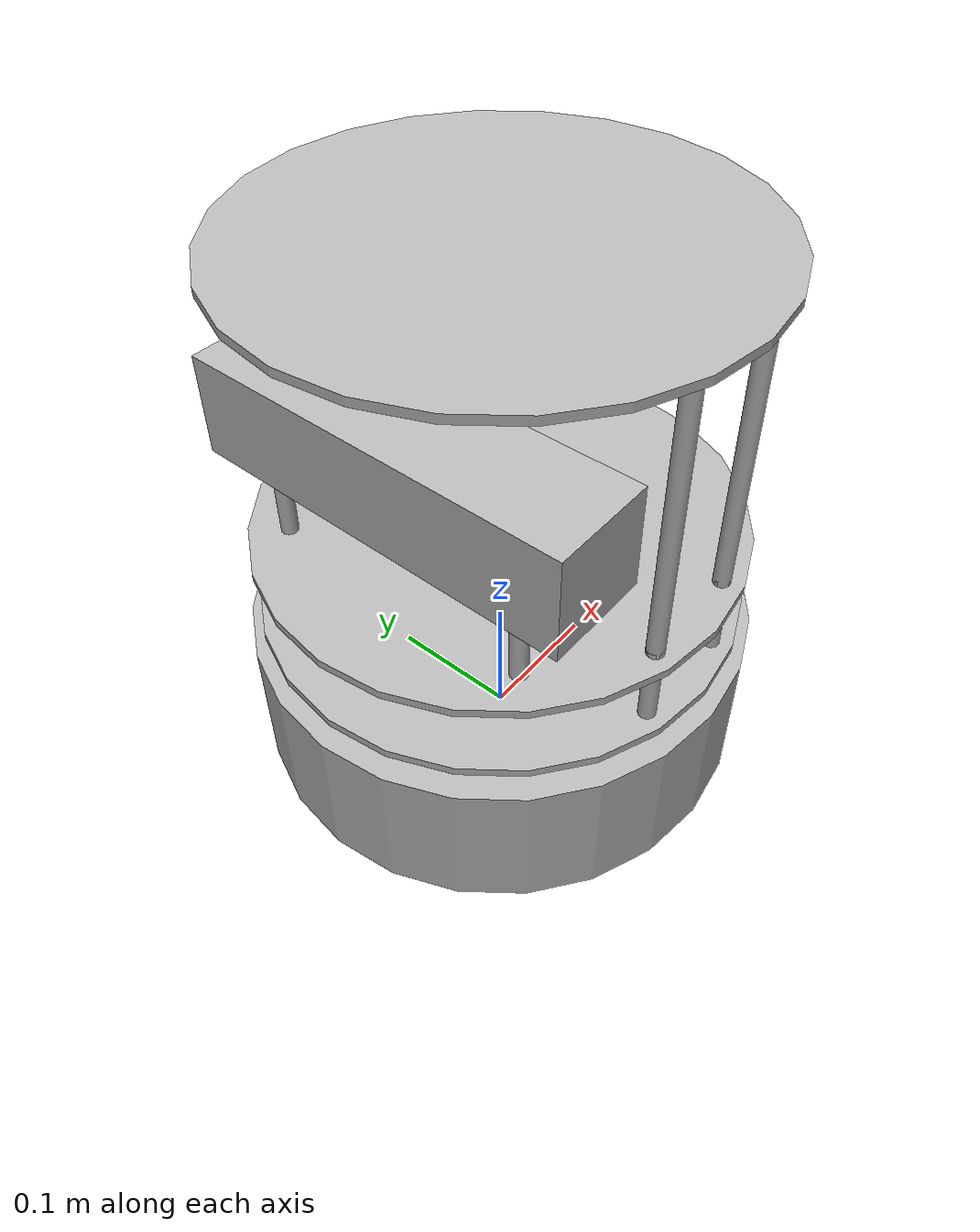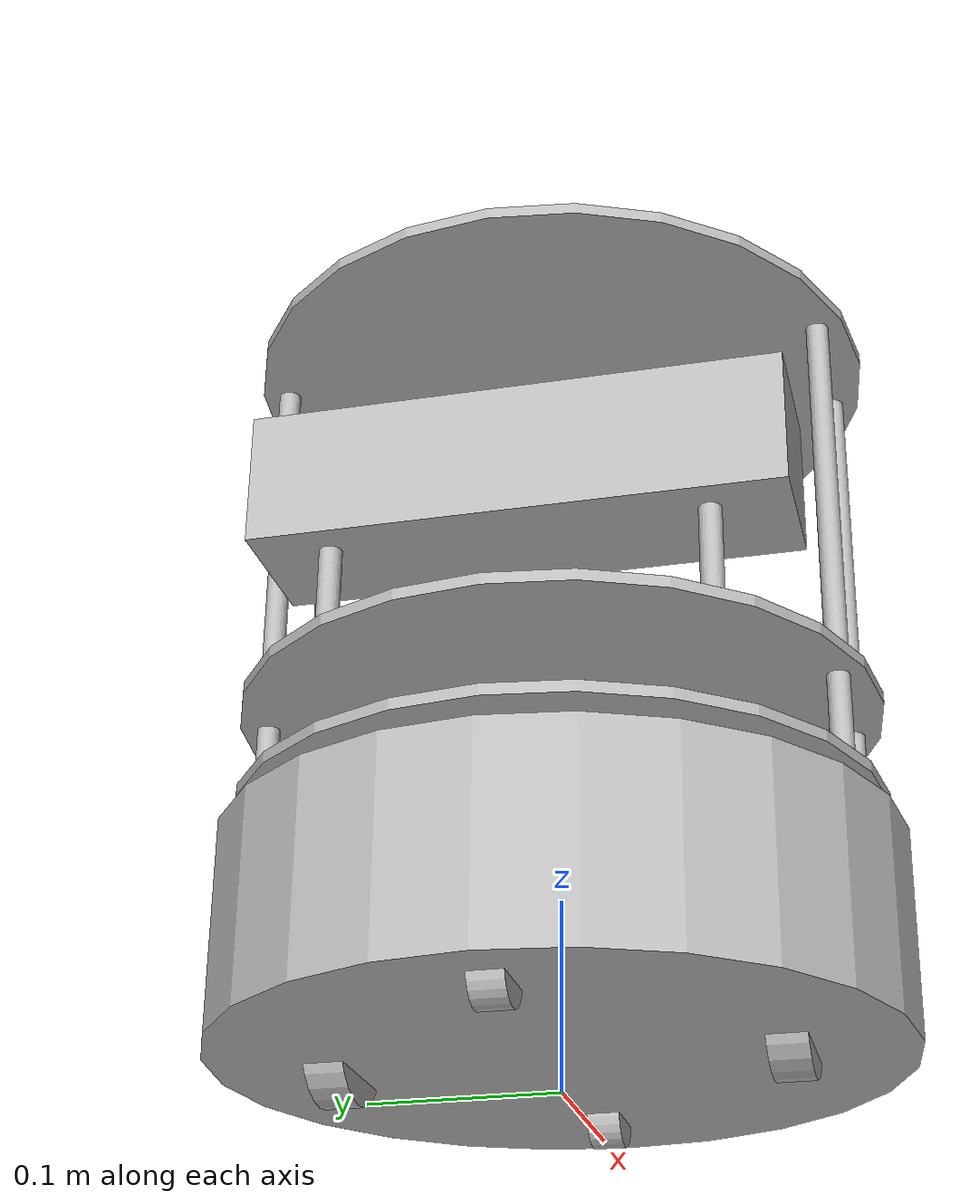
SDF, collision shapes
<?xml version='1.0'?>
<sdf version='1.6'>
  <model name='jason_turtlebot'>
    <link name='base_footprint'>
      <pose frame=''>0 0 0 0 -0 0</pose>
      <inertial>
        <pose frame=''>-0.002635 -4.1e-05 0.129243 0 -0 0</pose>
        <mass>4.6973</mass>
        <inertia>
          <ixx>0.1365</ixx>
          <ixy>-2.51802e-05</ixy>
          <ixz>0.0108194</ixz>
          <iyy>0.132157</iyy>
          <iyz>4.89572e-05</iyz>
          <izz>0.0741648</izz>
        </inertia>
      </inertial>
      <self_collide>0</self_collide>
      <kinematic>0</kinematic>
      <velocity_decay/>
      <sensor name='bumpers' type='contact'>
        <always_on>1</always_on>
        <update_rate>50</update_rate>
        <visualize>1</visualize>
        <contact>
          <collision>base_footprint_collision_base_link</collision>
          <topic>__default_topic__</topic>
        </contact>
        <pose frame=''>0 0 0.0102 0 -0 0</pose>
      </sensor>
      <sensor name='camera' type='depth'>
        <always_on>1</always_on>
        <update_rate>20</update_rate>
        <camera name='__default__'>
          <horizontal_fov>1.0472</horizontal_fov>
          <image>
            <format>B8G8R8</format>
            <width>640</width>
            <height>480</height>
          </image>
          <clip>
            <near>0.05</near>
            <far>8</far>
          </clip>
        </camera>
        <plugin name='kinect_camera_controller' filename='libgazebo_ros_openni_kinect.so'>
          <cameraName>camera</cameraName>
          <alwaysOn>true</alwaysOn>
          <updateRate>10</updateRate>
          <imageTopicName>rgb/image_raw</imageTopicName>
          <depthImageTopicName>depth/image_raw</depthImageTopicName>
          <pointCloudTopicName>depth/points</pointCloudTopicName>
          <cameraInfoTopicName>rgb/camera_info</cameraInfoTopicName>
          <depthImageCameraInfoTopicName>depth/camera_info</depthImageCameraInfoTopicName>
          <frameName>camera_depth_optical_frame</frameName>
          <baseline>0.1</baseline>
          <distortion_k1>0.0</distortion_k1>
          <distortion_k2>0.0</distortion_k2>
          <distortion_k3>0.0</distortion_k3>
          <distortion_t1>0.0</distortion_t1>
          <distortion_t2>0.0</distortion_t2>
          <pointCloudCutoff>0.4</pointCloudCutoff>
          <robotNamespace>/</robotNamespace>
        </plugin>
        <pose frame=''>-0.087 -0.0015 0.2972 0 -0 0</pose>
      </sensor>
      <sensor name='cliff_sensor_front' type='ray'>
        <always_on>1</always_on>
        <update_rate>50</update_rate>
        <visualize>1</visualize>
        <ray>
          <scan>
            <horizontal>
              <samples>50</samples>
              <resolution>1</resolution>
              <min_angle>-0.0436</min_angle>
              <max_angle>0.0436</max_angle>
            </horizontal>
            <vertical>
              <samples>1</samples>
              <min_angle>0</min_angle>
              <max_angle>0</max_angle>
            </vertical>
          </scan>
          <range>
            <min>0.01</min>
            <max>0.15</max>
            <resolution>1</resolution>
          </range>
        </ray>
        <pose frame=''>0.156 0 0.0316 3.14159 1.57079 3.14159</pose>
      </sensor>
      <sensor name='cliff_sensor_left' type='ray'>
        <always_on>1</always_on>
        <update_rate>50</update_rate>
        <visualize>1</visualize>
        <ray>
          <scan>
            <horizontal>
              <samples>50</samples>
              <resolution>1</resolution>
              <min_angle>-0.0436</min_angle>
              <max_angle>0.0436</max_angle>
            </horizontal>
            <vertical>
              <samples>1</samples>
              <min_angle>0</min_angle>
              <max_angle>0</max_angle>
            </vertical>
          </scan>
          <range>
            <min>0.01</min>
            <max>0.15</max>
            <resolution>1</resolution>
          </range>
        </ray>
        <pose frame=''>0.08734 0.13601 0.0316 3.14159 1.57079 3.14159</pose>
      </sensor>
      <sensor name='cliff_sensor_right' type='ray'>
        <always_on>1</always_on>
        <update_rate>50</update_rate>
        <visualize>1</visualize>
        <ray>
          <scan>
            <horizontal>
              <samples>50</samples>
              <resolution>1</resolution>
              <min_angle>-0.0436</min_angle>
              <max_angle>0.0436</max_angle>
            </horizontal>
            <vertical>
              <samples>1</samples>
              <min_angle>0</min_angle>
              <max_angle>0</max_angle>
            </vertical>
          </scan>
          <range>
            <min>0.01</min>
            <max>0.15</max>
            <resolution>1</resolution>
          </range>
        </ray>
        <pose frame=''>0.085 -0.13601 0.0316 3.14159 1.57079 3.14159</pose>
      </sensor>
      <sensor name='imu' type='imu'>
        <always_on>1</always_on>
        <update_rate>50</update_rate>
        <visualize>0</visualize>
        <imu>
          <angular_velocity>
            <x>
              <noise type='gaussian'>
                <mean>0</mean>
                <stddev>1.96e-06</stddev>
                <bias_mean>0</bias_mean>
                <bias_stddev>0</bias_stddev>
              </noise>
            </x>
            <y>
              <noise type='gaussian'>
                <mean>0</mean>
                <stddev>1.96e-06</stddev>
                <bias_mean>0</bias_mean>
                <bias_stddev>0</bias_stddev>
              </noise>
            </y>
            <z>
              <noise type='gaussian'>
                <mean>0</mean>
                <stddev>1.96e-06</stddev>
                <bias_mean>0</bias_mean>
                <bias_stddev>0</bias_stddev>
              </noise>
            </z>
          </angular_velocity>
          <linear_acceleration>
            <x>
              <noise type='gaussian'>
                <mean>0</mean>
                <stddev>0.017</stddev>
                <bias_mean>0.1</bias_mean>
                <bias_stddev>0.001</bias_stddev>
              </noise>
            </x>
            <y>
              <noise type='gaussian'>
                <mean>0</mean>
                <stddev>0.017</stddev>
                <bias_mean>0.1</bias_mean>
                <bias_stddev>0.001</bias_stddev>
              </noise>
            </y>
            <z>
              <noise type='gaussian'>
                <mean>0</mean>
                <stddev>0.017</stddev>
                <bias_mean>0.1</bias_mean>
                <bias_stddev>0.001</bias_stddev>
              </noise>
            </z>
          </linear_acceleration>
        </imu>
        <pose frame=''>0.056 0.062 0.0304 0 -0 0</pose>
      </sensor>
      <visual name='base_footprint_fixed_joint_lump__base_link_visual'>
        <pose frame=''>0.001 0 0.06219 0 -0 0</pose>
        <geometry>
          <mesh>
            <scale>1 1 1</scale>
            <uri>/opt/ros/kinetic/share/kobuki_description/meshes/main_body.dae</uri>
          </mesh>
        </geometry>
        <material>
          <script>
            <uri>__default__</uri>
            <name>__default__</name>
          </script>
        </material>
        <cast_shadows>1</cast_shadows>
        <transparency>0</transparency>
      </visual>
      <visual name='base_footprint_fixed_joint_lump__camera_link_visual_1'>
        <pose frame=''>-0.102 0.002 0.3012 0 -0 0</pose>
        <geometry>
          <mesh>
            <scale>1 1 1</scale>
            <uri>/opt/ros/kinetic/share/turtlebot_description/meshes/sensors/xtion_pro_camera.dae</uri>
          </mesh>
        </geometry>
        <material>
          <script>
            <uri>__default__</uri>
            <name>__default__</name>
          </script>
        </material>
        <cast_shadows>1</cast_shadows>
        <transparency>0</transparency>
      </visual>
      <visual name='base_footprint_fixed_joint_lump__mount_asus_xtion_pro_link_visual_2'>
        <pose frame=''>-0.1024 0 0.2822 -1.5708 0 0</pose>
        <geometry>
          <mesh>
            <scale>1 1 1</scale>
            <uri>/opt/ros/kinetic/share/turtlebot_description/meshes/sensors/xtion_pro_stack.dae</uri>
          </mesh>
        </geometry>
        <cast_shadows>1</cast_shadows>
        <transparency>0</transparency>
      </visual>
      <visual name='base_footprint_fixed_joint_lump__plate_bottom_link_visual_3'>
        <pose frame=''>0.02364 0 0.1408 0 -0 0</pose>
        <geometry>
          <mesh>
            <scale>1 1 1</scale>
            <uri>/opt/ros/kinetic/share/turtlebot_description/meshes/stacks/hexagons/plate_bottom.dae</uri>
          </mesh>
        </geometry>
        <cast_shadows>1</cast_shadows>
        <transparency>0</transparency>
      </visual>
      <visual name='base_footprint_fixed_joint_lump__plate_middle_link_visual_4'>
        <pose frame=''>-0.01364 0 0.1976 0 -0 0</pose>
        <geometry>
          <mesh>
            <scale>1 1 1</scale>
            <uri>/opt/ros/kinetic/share/turtlebot_description/meshes/stacks/hexagons/plate_middle.dae</uri>
          </mesh>
        </geometry>
        <cast_shadows>1</cast_shadows>
        <transparency>0</transparency>
      </visual>
      <visual name='base_footprint_fixed_joint_lump__plate_top_link_visual_5'>
        <pose frame=''>-0.01364 0 0.4068 0 -0 0</pose>
        <geometry>
          <mesh>
            <scale>1 1 1</scale>
            <uri>/opt/ros/kinetic/share/turtlebot_description/meshes/stacks/hexagons/plate_top.dae</uri>
          </mesh>
        </geometry>
        <cast_shadows>1</cast_shadows>
        <transparency>0</transparency>
      </visual>
      <visual name='base_footprint_fixed_joint_lump__pole_bottom_0_link_visual_6'>
        <pose frame=''>0.12 0.082 0.113 0 -0 0</pose>
        <geometry>
          <mesh>
            <scale>1 1 1</scale>
            <uri>/opt/ros/kinetic/share/turtlebot_description/meshes/stacks/hexagons/pole_bottom.dae</uri>
          </mesh>
        </geometry>
        <cast_shadows>1</cast_shadows>
        <transparency>0</transparency>
      </visual>
      <visual name='base_footprint_fixed_joint_lump__pole_bottom_1_link_visual_7'>
        <pose frame=''>0.055 0.12 0.113 0 -0 0</pose>
        <geometry>
          <mesh>
            <scale>1 1 1</scale>
            <uri>/opt/ros/kinetic/share/turtlebot_description/meshes/stacks/hexagons/pole_bottom.dae</uri>
          </mesh>
        </geometry>
        <cast_shadows>1</cast_shadows>
        <transparency>0</transparency>
      </visual>
      <visual name='base_footprint_fixed_joint_lump__pole_bottom_2_link_visual_8'>
        <pose frame=''>-0.055 0.12 0.113 0 -0 0</pose>
        <geometry>
          <mesh>
            <scale>1 1 1</scale>
            <uri>/opt/ros/kinetic/share/turtlebot_description/meshes/stacks/hexagons/pole_bottom.dae</uri>
          </mesh>
        </geometry>
        <cast_shadows>1</cast_shadows>
        <transparency>0</transparency>
      </visual>
      <visual name='base_footprint_fixed_joint_lump__pole_bottom_3_link_visual_9'>
        <pose frame=''>0.12 -0.082 0.113 0 -0 0</pose>
        <geometry>
          <mesh>
            <scale>1 1 1</scale>
            <uri>/opt/ros/kinetic/share/turtlebot_description/meshes/stacks/hexagons/pole_bottom.dae</uri>
          </mesh>
        </geometry>
        <cast_shadows>1</cast_shadows>
        <transparency>0</transparency>
      </visual>
      <visual name='base_footprint_fixed_joint_lump__pole_bottom_5_link_visual_11'>
        <pose frame=''>-0.055 -0.12 0.113 0 -0 0</pose>
        <geometry>
          <mesh>
            <scale>1 1 1</scale>
            <uri>/opt/ros/kinetic/share/turtlebot_description/meshes/stacks/hexagons/pole_bottom.dae</uri>
          </mesh>
        </geometry>
        <cast_shadows>1</cast_shadows>
        <transparency>0</transparency>
      </visual>
      <visual name='base_footprint_fixed_joint_lump__pole_bottom_4_link_visual_10'>
        <pose frame=''>0.055 -0.12 0.113 0 -0 0</pose>
        <geometry>
          <mesh>
            <scale>1 1 1</scale>
            <uri>/opt/ros/kinetic/share/turtlebot_description/meshes/stacks/hexagons/pole_bottom.dae</uri>
          </mesh>
        </geometry>
        <cast_shadows>1</cast_shadows>
        <transparency>0</transparency>
      </visual>
      <visual name='base_footprint_fixed_joint_lump__pole_kinect_0_link_visual_12'>
        <pose frame=''>-0.1024 0.098 0.2374 0 -0 0</pose>
        <geometry>
          <mesh>
            <scale>1 1 1</scale>
            <uri>/opt/ros/kinetic/share/turtlebot_description/meshes/sensors/sensor_pole.dae</uri>
          </mesh>
        </geometry>
        <cast_shadows>1</cast_shadows>
        <transparency>0</transparency>
      </visual>
      <visual name='base_footprint_fixed_joint_lump__pole_middle_0_link_visual_14'>
        <pose frame=''>0.0381 0.1505 0.1742 3.14159 -0 3.14159</pose>
        <geometry>
          <mesh>
            <scale>1 1 1</scale>
            <uri>/opt/ros/kinetic/share/turtlebot_description/meshes/stacks/hexagons/pole_middle.dae</uri>
          </mesh>
        </geometry>
        <cast_shadows>1</cast_shadows>
        <transparency>0</transparency>
      </visual>
      <visual name='base_footprint_fixed_joint_lump__pole_kinect_1_link_visual_13'>
        <pose frame=''>-0.1024 -0.098 0.2374 0 -0 0</pose>
        <geometry>
          <mesh>
            <scale>1 1 1</scale>
            <uri>/opt/ros/kinetic/share/turtlebot_description/meshes/sensors/sensor_pole.dae</uri>
          </mesh>
        </geometry>
        <cast_shadows>1</cast_shadows>
        <transparency>0</transparency>
      </visual>
      <visual name='base_footprint_fixed_joint_lump__pole_middle_1_link_visual_15'>
        <pose frame=''>0.0381 -0.1505 0.1742 3.14159 -0 3.14159</pose>
        <geometry>
          <mesh>
            <scale>1 1 1</scale>
            <uri>/opt/ros/kinetic/share/turtlebot_description/meshes/stacks/hexagons/pole_middle.dae</uri>
          </mesh>
        </geometry>
        <cast_shadows>1</cast_shadows>
        <transparency>0</transparency>
      </visual>
      <visual name='base_footprint_fixed_joint_lump__pole_middle_2_link_visual_16'>
        <pose frame=''>-0.0381 0.1505 0.1742 3.14159 -0 3.14159</pose>
        <geometry>
          <mesh>
            <scale>1 1 1</scale>
            <uri>/opt/ros/kinetic/share/turtlebot_description/meshes/stacks/hexagons/pole_middle.dae</uri>
          </mesh>
        </geometry>
        <cast_shadows>1</cast_shadows>
        <transparency>0</transparency>
      </visual>
      <visual name='base_footprint_fixed_joint_lump__pole_middle_3_link_visual_17'>
        <pose frame=''>-0.0381 -0.1505 0.1742 3.14159 -0 3.14159</pose>
        <geometry>
          <mesh>
            <scale>1 1 1</scale>
            <uri>/opt/ros/kinetic/share/turtlebot_description/meshes/stacks/hexagons/pole_middle.dae</uri>
          </mesh>
        </geometry>
        <cast_shadows>1</cast_shadows>
        <transparency>0</transparency>
      </visual>
      <visual name='base_footprint_fixed_joint_lump__pole_top_0_link_visual_18'>
        <pose frame=''>0.0381 0.1505 0.3022 0 -0 0</pose>
        <geometry>
          <mesh>
            <scale>1 1 1</scale>
            <uri>/opt/ros/kinetic/share/turtlebot_description/meshes/stacks/hexagons/pole_top.dae</uri>
          </mesh>
        </geometry>
        <cast_shadows>1</cast_shadows>
        <transparency>0</transparency>
      </visual>
      <visual name='base_footprint_fixed_joint_lump__pole_top_2_link_visual_20'>
        <pose frame=''>-0.0381 0.1505 0.3022 0 -0 0</pose>
        <geometry>
          <mesh>
            <scale>1 1 1</scale>
            <uri>/opt/ros/kinetic/share/turtlebot_description/meshes/stacks/hexagons/pole_top.dae</uri>
          </mesh>
        </geometry>
        <cast_shadows>1</cast_shadows>
        <transparency>0</transparency>
      </visual>
      <visual name='base_footprint_fixed_joint_lump__pole_top_1_link_visual_19'>
        <pose frame=''>0.0381 -0.1505 0.3022 0 -0 0</pose>
        <geometry>
          <mesh>
            <scale>1 1 1</scale>
            <uri>/opt/ros/kinetic/share/turtlebot_description/meshes/stacks/hexagons/pole_top.dae</uri>
          </mesh>
        </geometry>
        <cast_shadows>1</cast_shadows>
        <transparency>0</transparency>
      </visual>
      <visual name='base_footprint_fixed_joint_lump__pole_top_3_link_visual_21'>
        <pose frame=''>-0.0381 -0.1505 0.3022 0 -0 0</pose>
        <geometry>
          <mesh>
            <scale>1 1 1</scale>
            <uri>/opt/ros/kinetic/share/turtlebot_description/meshes/stacks/hexagons/pole_top.dae</uri>
          </mesh>
        </geometry>
        <cast_shadows>1</cast_shadows>
        <transparency>0</transparency>
      </visual>
      <collision name='base_footprint_fixed_joint_lump__base_link_collision'>
        <laser_retro>0</laser_retro>
        <max_contacts>10</max_contacts>
        <pose frame=''>0 0 0.06969 0 -0 0</pose>
        <geometry>
          <cylinder>
            <radius>0.178</radius>
            <length>0.10938</length>
          </cylinder>
        </geometry>
        <surface>
          <friction>
            <ode>
              <mu>0.3</mu>
              <mu2>0.3</mu2>
              <fdir1>0 0 0</fdir1>
              <slip1>0</slip1>
              <slip2>0</slip2>
            </ode>
            <torsional>
              <coefficient>1</coefficient>
              <patch_radius>0</patch_radius>
              <surface_radius>0</surface_radius>
              <use_patch_radius>1</use_patch_radius>
              <ode>
                <slip>0</slip>
              </ode>
            </torsional>
          </friction>
          <bounce>
            <restitution_coefficient>0</restitution_coefficient>
            <threshold>1e+06</threshold>
          </bounce>
          <contact>
            <collide_without_contact>0</collide_without_contact>
            <collide_without_contact_bitmask>1</collide_without_contact_bitmask>
            <collide_bitmask>1</collide_bitmask>
            <ode>
              <soft_cfm>0</soft_cfm>
              <soft_erp>0.2</soft_erp>
              <kp>1e+13</kp>
              <kd>1</kd>
              <max_vel>0.01</max_vel>
              <min_depth>0</min_depth>
            </ode>
            <bullet>
              <split_impulse>1</split_impulse>
              <split_impulse_penetration_threshold>-0.01</split_impulse_penetration_threshold>
              <soft_cfm>0</soft_cfm>
              <soft_erp>0.2</soft_erp>
              <kp>1e+13</kp>
              <kd>1</kd>
            </bullet>
          </contact>
        </surface>
      </collision>
      <collision name='base_footprint_fixed_joint_lump__camera_link_collision_1'>
        <laser_retro>0</laser_retro>
        <max_contacts>10</max_contacts>
        <pose frame=''>-0.087 -0.0015 0.2972 0 -0 0</pose>
        <geometry>
          <box>
            <size>0.073 0.276 0.072</size>
          </box>
        </geometry>
        <surface>
          <friction>
            <ode>
              <mu>1</mu>
              <mu2>1</mu2>
              <fdir1>0 0 0</fdir1>
              <slip1>0</slip1>
              <slip2>0</slip2>
            </ode>
            <torsional>
              <coefficient>1</coefficient>
              <patch_radius>0</patch_radius>
              <surface_radius>0</surface_radius>
              <use_patch_radius>1</use_patch_radius>
              <ode>
                <slip>0</slip>
              </ode>
            </torsional>
          </friction>
          <bounce>
            <restitution_coefficient>0</restitution_coefficient>
            <threshold>1e+06</threshold>
          </bounce>
          <contact>
            <collide_without_contact>0</collide_without_contact>
            <collide_without_contact_bitmask>1</collide_without_contact_bitmask>
            <collide_bitmask>1</collide_bitmask>
            <ode>
              <soft_cfm>0</soft_cfm>
              <soft_erp>0.2</soft_erp>
              <kp>1e+13</kp>
              <kd>1</kd>
              <max_vel>0.01</max_vel>
              <min_depth>0</min_depth>
            </ode>
            <bullet>
              <split_impulse>1</split_impulse>
              <split_impulse_penetration_threshold>-0.01</split_impulse_penetration_threshold>
              <soft_cfm>0</soft_cfm>
              <soft_erp>0.2</soft_erp>
              <kp>1e+13</kp>
              <kd>1</kd>
            </bullet>
          </contact>
        </surface>
      </collision>
      <collision name='base_footprint_fixed_joint_lump__caster_back_link_collision_2'>
        <laser_retro>0</laser_retro>
        <max_contacts>10</max_contacts>
        <pose frame=''>-0.135 0 0.0192 -1.5708 0 0</pose>
        <geometry>
          <cylinder>
            <radius>0.017</radius>
            <length>0.0176</length>
          </cylinder>
        </geometry>
        <surface>
          <friction>
            <ode>
              <mu>0</mu>
              <mu2>0</mu2>
              <fdir1>0 0 0</fdir1>
              <slip1>0</slip1>
              <slip2>0</slip2>
            </ode>
            <torsional>
              <coefficient>1</coefficient>
              <patch_radius>0</patch_radius>
              <surface_radius>0</surface_radius>
              <use_patch_radius>1</use_patch_radius>
              <ode>
                <slip>0</slip>
              </ode>
            </torsional>
          </friction>
          <bounce>
            <restitution_coefficient>0</restitution_coefficient>
            <threshold>1e+06</threshold>
          </bounce>
          <contact>
            <collide_without_contact>0</collide_without_contact>
            <collide_without_contact_bitmask>1</collide_without_contact_bitmask>
            <collide_bitmask>1</collide_bitmask>
            <ode>
              <soft_cfm>0</soft_cfm>
              <soft_erp>0.2</soft_erp>
              <kp>1e+06</kp>
              <kd>100</kd>
              <max_vel>1</max_vel>
              <min_depth>0.001</min_depth>
            </ode>
            <bullet>
              <split_impulse>1</split_impulse>
              <split_impulse_penetration_threshold>-0.01</split_impulse_penetration_threshold>
              <soft_cfm>0</soft_cfm>
              <soft_erp>0.2</soft_erp>
              <kp>1e+06</kp>
              <kd>100</kd>
            </bullet>
          </contact>
        </surface>
      </collision>
      <collision name='base_footprint_fixed_joint_lump__mount_asus_xtion_pro_link_collision_4'>
        <laser_retro>0</laser_retro>
        <max_contacts>10</max_contacts>
        <pose frame=''>-0.1024 0 0.2822 0 -0 0</pose>
        <geometry>
          <box>
            <size>0.033 0.276 0.012</size>
          </box>
        </geometry>
        <surface>
          <friction>
            <ode>
              <mu>1</mu>
              <mu2>1</mu2>
              <fdir1>0 0 0</fdir1>
              <slip1>0</slip1>
              <slip2>0</slip2>
            </ode>
            <torsional>
              <coefficient>1</coefficient>
              <patch_radius>0</patch_radius>
              <surface_radius>0</surface_radius>
              <use_patch_radius>1</use_patch_radius>
              <ode>
                <slip>0</slip>
              </ode>
            </torsional>
          </friction>
          <bounce>
            <restitution_coefficient>0</restitution_coefficient>
            <threshold>1e+06</threshold>
          </bounce>
          <contact>
            <collide_without_contact>0</collide_without_contact>
            <collide_without_contact_bitmask>1</collide_without_contact_bitmask>
            <collide_bitmask>1</collide_bitmask>
            <ode>
              <soft_cfm>0</soft_cfm>
              <soft_erp>0.2</soft_erp>
              <kp>1e+13</kp>
              <kd>1</kd>
              <max_vel>0.01</max_vel>
              <min_depth>0</min_depth>
            </ode>
            <bullet>
              <split_impulse>1</split_impulse>
              <split_impulse_penetration_threshold>-0.01</split_impulse_penetration_threshold>
              <soft_cfm>0</soft_cfm>
              <soft_erp>0.2</soft_erp>
              <kp>1e+13</kp>
              <kd>1</kd>
            </bullet>
          </contact>
        </surface>
      </collision>
      <collision name='base_footprint_fixed_joint_lump__caster_front_link_collision_3'>
        <laser_retro>0</laser_retro>
        <max_contacts>10</max_contacts>
        <pose frame=''>0.115 0 0.0172 -1.5708 0 0</pose>
        <geometry>
          <cylinder>
            <radius>0.017</radius>
            <length>0.0176</length>
          </cylinder>
        </geometry>
        <surface>
          <friction>
            <ode>
              <mu>0</mu>
              <mu2>0</mu2>
              <fdir1>0 0 0</fdir1>
              <slip1>0</slip1>
              <slip2>0</slip2>
            </ode>
            <torsional>
              <coefficient>1</coefficient>
              <patch_radius>0</patch_radius>
              <surface_radius>0</surface_radius>
              <use_patch_radius>1</use_patch_radius>
              <ode>
                <slip>0</slip>
              </ode>
            </torsional>
          </friction>
          <bounce>
            <restitution_coefficient>0</restitution_coefficient>
            <threshold>1e+06</threshold>
          </bounce>
          <contact>
            <collide_without_contact>0</collide_without_contact>
            <collide_without_contact_bitmask>1</collide_without_contact_bitmask>
            <collide_bitmask>1</collide_bitmask>
            <ode>
              <soft_cfm>0</soft_cfm>
              <soft_erp>0.2</soft_erp>
              <kp>1e+06</kp>
              <kd>100</kd>
              <max_vel>1</max_vel>
              <min_depth>0.001</min_depth>
            </ode>
            <bullet>
              <split_impulse>1</split_impulse>
              <split_impulse_penetration_threshold>-0.01</split_impulse_penetration_threshold>
              <soft_cfm>0</soft_cfm>
              <soft_erp>0.2</soft_erp>
              <kp>1e+06</kp>
              <kd>100</kd>
            </bullet>
          </contact>
        </surface>
      </collision>
      <collision name='base_footprint_fixed_joint_lump__plate_bottom_link_collision_5'>
        <laser_retro>0</laser_retro>
        <max_contacts>10</max_contacts>
        <pose frame=''>0 0 0.1408 0 -0 0</pose>
        <geometry>
          <cylinder>
            <radius>0.17</radius>
            <length>0.006</length>
          </cylinder>
        </geometry>
        <surface>
          <friction>
            <ode>
              <mu>1</mu>
              <mu2>1</mu2>
              <fdir1>0 0 0</fdir1>
              <slip1>0</slip1>
              <slip2>0</slip2>
            </ode>
            <torsional>
              <coefficient>1</coefficient>
              <patch_radius>0</patch_radius>
              <surface_radius>0</surface_radius>
              <use_patch_radius>1</use_patch_radius>
              <ode>
                <slip>0</slip>
              </ode>
            </torsional>
          </friction>
          <bounce>
            <restitution_coefficient>0</restitution_coefficient>
            <threshold>1e+06</threshold>
          </bounce>
          <contact>
            <collide_without_contact>0</collide_without_contact>
            <collide_without_contact_bitmask>1</collide_without_contact_bitmask>
            <collide_bitmask>1</collide_bitmask>
            <ode>
              <soft_cfm>0</soft_cfm>
              <soft_erp>0.2</soft_erp>
              <kp>1e+13</kp>
              <kd>1</kd>
              <max_vel>0.01</max_vel>
              <min_depth>0</min_depth>
            </ode>
            <bullet>
              <split_impulse>1</split_impulse>
              <split_impulse_penetration_threshold>-0.01</split_impulse_penetration_threshold>
              <soft_cfm>0</soft_cfm>
              <soft_erp>0.2</soft_erp>
              <kp>1e+13</kp>
              <kd>1</kd>
            </bullet>
          </contact>
        </surface>
      </collision>
      <collision name='base_footprint_fixed_joint_lump__plate_middle_link_collision_6'>
        <laser_retro>0</laser_retro>
        <max_contacts>10</max_contacts>
        <pose frame=''>0 0 0.1976 0 -0 0</pose>
        <geometry>
          <cylinder>
            <radius>0.17</radius>
            <length>0.006</length>
          </cylinder>
        </geometry>
        <surface>
          <friction>
            <ode>
              <mu>1</mu>
              <mu2>1</mu2>
              <fdir1>0 0 0</fdir1>
              <slip1>0</slip1>
              <slip2>0</slip2>
            </ode>
            <torsional>
              <coefficient>1</coefficient>
              <patch_radius>0</patch_radius>
              <surface_radius>0</surface_radius>
              <use_patch_radius>1</use_patch_radius>
              <ode>
                <slip>0</slip>
              </ode>
            </torsional>
          </friction>
          <bounce>
            <restitution_coefficient>0</restitution_coefficient>
            <threshold>1e+06</threshold>
          </bounce>
          <contact>
            <collide_without_contact>0</collide_without_contact>
            <collide_without_contact_bitmask>1</collide_without_contact_bitmask>
            <collide_bitmask>1</collide_bitmask>
            <ode>
              <soft_cfm>0</soft_cfm>
              <soft_erp>0.2</soft_erp>
              <kp>1e+13</kp>
              <kd>1</kd>
              <max_vel>0.01</max_vel>
              <min_depth>0</min_depth>
            </ode>
            <bullet>
              <split_impulse>1</split_impulse>
              <split_impulse_penetration_threshold>-0.01</split_impulse_penetration_threshold>
              <soft_cfm>0</soft_cfm>
              <soft_erp>0.2</soft_erp>
              <kp>1e+13</kp>
              <kd>1</kd>
            </bullet>
          </contact>
        </surface>
      </collision>
      <collision name='base_footprint_fixed_joint_lump__plate_top_link_collision_7'>
        <laser_retro>0</laser_retro>
        <max_contacts>10</max_contacts>
        <pose frame=''>0 0 0.4068 0 -0 0</pose>
        <geometry>
          <cylinder>
            <radius>0.17</radius>
            <length>0.006</length>
          </cylinder>
        </geometry>
        <surface>
          <friction>
            <ode>
              <mu>1</mu>
              <mu2>1</mu2>
              <fdir1>0 0 0</fdir1>
              <slip1>0</slip1>
              <slip2>0</slip2>
            </ode>
            <torsional>
              <coefficient>1</coefficient>
              <patch_radius>0</patch_radius>
              <surface_radius>0</surface_radius>
              <use_patch_radius>1</use_patch_radius>
              <ode>
                <slip>0</slip>
              </ode>
            </torsional>
          </friction>
          <bounce>
            <restitution_coefficient>0</restitution_coefficient>
            <threshold>1e+06</threshold>
          </bounce>
          <contact>
            <collide_without_contact>0</collide_without_contact>
            <collide_without_contact_bitmask>1</collide_without_contact_bitmask>
            <collide_bitmask>1</collide_bitmask>
            <ode>
              <soft_cfm>0</soft_cfm>
              <soft_erp>0.2</soft_erp>
              <kp>1e+13</kp>
              <kd>1</kd>
              <max_vel>0.01</max_vel>
              <min_depth>0</min_depth>
            </ode>
            <bullet>
              <split_impulse>1</split_impulse>
              <split_impulse_penetration_threshold>-0.01</split_impulse_penetration_threshold>
              <soft_cfm>0</soft_cfm>
              <soft_erp>0.2</soft_erp>
              <kp>1e+13</kp>
              <kd>1</kd>
            </bullet>
          </contact>
        </surface>
      </collision>
      <collision name='base_footprint_fixed_joint_lump__pole_bottom_2_link_collision_10'>
        <laser_retro>0</laser_retro>
        <max_contacts>10</max_contacts>
        <pose frame=''>-0.055 0.12 0.113 0 -0 0</pose>
        <geometry>
          <cylinder>
            <radius>0.006</radius>
            <length>0.0492</length>
          </cylinder>
        </geometry>
        <surface>
          <friction>
            <ode>
              <mu>1</mu>
              <mu2>1</mu2>
              <fdir1>0 0 0</fdir1>
              <slip1>0</slip1>
              <slip2>0</slip2>
            </ode>
            <torsional>
              <coefficient>1</coefficient>
              <patch_radius>0</patch_radius>
              <surface_radius>0</surface_radius>
              <use_patch_radius>1</use_patch_radius>
              <ode>
                <slip>0</slip>
              </ode>
            </torsional>
          </friction>
          <bounce>
            <restitution_coefficient>0</restitution_coefficient>
            <threshold>1e+06</threshold>
          </bounce>
          <contact>
            <collide_without_contact>0</collide_without_contact>
            <collide_without_contact_bitmask>1</collide_without_contact_bitmask>
            <collide_bitmask>1</collide_bitmask>
            <ode>
              <soft_cfm>0</soft_cfm>
              <soft_erp>0.2</soft_erp>
              <kp>1e+13</kp>
              <kd>1</kd>
              <max_vel>0.01</max_vel>
              <min_depth>0</min_depth>
            </ode>
            <bullet>
              <split_impulse>1</split_impulse>
              <split_impulse_penetration_threshold>-0.01</split_impulse_penetration_threshold>
              <soft_cfm>0</soft_cfm>
              <soft_erp>0.2</soft_erp>
              <kp>1e+13</kp>
              <kd>1</kd>
            </bullet>
          </contact>
        </surface>
      </collision>
      <collision name='base_footprint_fixed_joint_lump__pole_bottom_0_link_collision_8'>
        <laser_retro>0</laser_retro>
        <max_contacts>10</max_contacts>
        <pose frame=''>0.12 0.082 0.113 0 -0 0</pose>
        <geometry>
          <cylinder>
            <radius>0.006</radius>
            <length>0.0492</length>
          </cylinder>
        </geometry>
        <surface>
          <friction>
            <ode>
              <mu>1</mu>
              <mu2>1</mu2>
              <fdir1>0 0 0</fdir1>
              <slip1>0</slip1>
              <slip2>0</slip2>
            </ode>
            <torsional>
              <coefficient>1</coefficient>
              <patch_radius>0</patch_radius>
              <surface_radius>0</surface_radius>
              <use_patch_radius>1</use_patch_radius>
              <ode>
                <slip>0</slip>
              </ode>
            </torsional>
          </friction>
          <bounce>
            <restitution_coefficient>0</restitution_coefficient>
            <threshold>1e+06</threshold>
          </bounce>
          <contact>
            <collide_without_contact>0</collide_without_contact>
            <collide_without_contact_bitmask>1</collide_without_contact_bitmask>
            <collide_bitmask>1</collide_bitmask>
            <ode>
              <soft_cfm>0</soft_cfm>
              <soft_erp>0.2</soft_erp>
              <kp>1e+13</kp>
              <kd>1</kd>
              <max_vel>0.01</max_vel>
              <min_depth>0</min_depth>
            </ode>
            <bullet>
              <split_impulse>1</split_impulse>
              <split_impulse_penetration_threshold>-0.01</split_impulse_penetration_threshold>
              <soft_cfm>0</soft_cfm>
              <soft_erp>0.2</soft_erp>
              <kp>1e+13</kp>
              <kd>1</kd>
            </bullet>
          </contact>
        </surface>
      </collision>
      <collision name='base_footprint_fixed_joint_lump__pole_bottom_1_link_collision_9'>
        <laser_retro>0</laser_retro>
        <max_contacts>10</max_contacts>
        <pose frame=''>0.055 0.12 0.113 0 -0 0</pose>
        <geometry>
          <cylinder>
            <radius>0.006</radius>
            <length>0.0492</length>
          </cylinder>
        </geometry>
        <surface>
          <friction>
            <ode>
              <mu>1</mu>
              <mu2>1</mu2>
              <fdir1>0 0 0</fdir1>
              <slip1>0</slip1>
              <slip2>0</slip2>
            </ode>
            <torsional>
              <coefficient>1</coefficient>
              <patch_radius>0</patch_radius>
              <surface_radius>0</surface_radius>
              <use_patch_radius>1</use_patch_radius>
              <ode>
                <slip>0</slip>
              </ode>
            </torsional>
          </friction>
          <bounce>
            <restitution_coefficient>0</restitution_coefficient>
            <threshold>1e+06</threshold>
          </bounce>
          <contact>
            <collide_without_contact>0</collide_without_contact>
            <collide_without_contact_bitmask>1</collide_without_contact_bitmask>
            <collide_bitmask>1</collide_bitmask>
            <ode>
              <soft_cfm>0</soft_cfm>
              <soft_erp>0.2</soft_erp>
              <kp>1e+13</kp>
              <kd>1</kd>
              <max_vel>0.01</max_vel>
              <min_depth>0</min_depth>
            </ode>
            <bullet>
              <split_impulse>1</split_impulse>
              <split_impulse_penetration_threshold>-0.01</split_impulse_penetration_threshold>
              <soft_cfm>0</soft_cfm>
              <soft_erp>0.2</soft_erp>
              <kp>1e+13</kp>
              <kd>1</kd>
            </bullet>
          </contact>
        </surface>
      </collision>
      <collision name='base_footprint_fixed_joint_lump__pole_bottom_3_link_collision_11'>
        <laser_retro>0</laser_retro>
        <max_contacts>10</max_contacts>
        <pose frame=''>0.12 -0.082 0.113 0 -0 0</pose>
        <geometry>
          <cylinder>
            <radius>0.006</radius>
            <length>0.0492</length>
          </cylinder>
        </geometry>
        <surface>
          <friction>
            <ode>
              <mu>1</mu>
              <mu2>1</mu2>
              <fdir1>0 0 0</fdir1>
              <slip1>0</slip1>
              <slip2>0</slip2>
            </ode>
            <torsional>
              <coefficient>1</coefficient>
              <patch_radius>0</patch_radius>
              <surface_radius>0</surface_radius>
              <use_patch_radius>1</use_patch_radius>
              <ode>
                <slip>0</slip>
              </ode>
            </torsional>
          </friction>
          <bounce>
            <restitution_coefficient>0</restitution_coefficient>
            <threshold>1e+06</threshold>
          </bounce>
          <contact>
            <collide_without_contact>0</collide_without_contact>
            <collide_without_contact_bitmask>1</collide_without_contact_bitmask>
            <collide_bitmask>1</collide_bitmask>
            <ode>
              <soft_cfm>0</soft_cfm>
              <soft_erp>0.2</soft_erp>
              <kp>1e+13</kp>
              <kd>1</kd>
              <max_vel>0.01</max_vel>
              <min_depth>0</min_depth>
            </ode>
            <bullet>
              <split_impulse>1</split_impulse>
              <split_impulse_penetration_threshold>-0.01</split_impulse_penetration_threshold>
              <soft_cfm>0</soft_cfm>
              <soft_erp>0.2</soft_erp>
              <kp>1e+13</kp>
              <kd>1</kd>
            </bullet>
          </contact>
        </surface>
      </collision>
      <collision name='base_footprint_fixed_joint_lump__pole_bottom_4_link_collision_12'>
        <laser_retro>0</laser_retro>
        <max_contacts>10</max_contacts>
        <pose frame=''>0.055 -0.12 0.113 0 -0 0</pose>
        <geometry>
          <cylinder>
            <radius>0.006</radius>
            <length>0.0492</length>
          </cylinder>
        </geometry>
        <surface>
          <friction>
            <ode>
              <mu>1</mu>
              <mu2>1</mu2>
              <fdir1>0 0 0</fdir1>
              <slip1>0</slip1>
              <slip2>0</slip2>
            </ode>
            <torsional>
              <coefficient>1</coefficient>
              <patch_radius>0</patch_radius>
              <surface_radius>0</surface_radius>
              <use_patch_radius>1</use_patch_radius>
              <ode>
                <slip>0</slip>
              </ode>
            </torsional>
          </friction>
          <bounce>
            <restitution_coefficient>0</restitution_coefficient>
            <threshold>1e+06</threshold>
          </bounce>
          <contact>
            <collide_without_contact>0</collide_without_contact>
            <collide_without_contact_bitmask>1</collide_without_contact_bitmask>
            <collide_bitmask>1</collide_bitmask>
            <ode>
              <soft_cfm>0</soft_cfm>
              <soft_erp>0.2</soft_erp>
              <kp>1e+13</kp>
              <kd>1</kd>
              <max_vel>0.01</max_vel>
              <min_depth>0</min_depth>
            </ode>
            <bullet>
              <split_impulse>1</split_impulse>
              <split_impulse_penetration_threshold>-0.01</split_impulse_penetration_threshold>
              <soft_cfm>0</soft_cfm>
              <soft_erp>0.2</soft_erp>
              <kp>1e+13</kp>
              <kd>1</kd>
            </bullet>
          </contact>
        </surface>
      </collision>
      <collision name='base_footprint_fixed_joint_lump__pole_kinect_1_link_collision_15'>
        <laser_retro>0</laser_retro>
        <max_contacts>10</max_contacts>
        <pose frame=''>-0.1024 -0.098 0.2474 0 -0 0</pose>
        <geometry>
          <cylinder>
            <radius>0.006</radius>
            <length>0.0936</length>
          </cylinder>
        </geometry>
        <surface>
          <friction>
            <ode>
              <mu>1</mu>
              <mu2>1</mu2>
              <fdir1>0 0 0</fdir1>
              <slip1>0</slip1>
              <slip2>0</slip2>
            </ode>
            <torsional>
              <coefficient>1</coefficient>
              <patch_radius>0</patch_radius>
              <surface_radius>0</surface_radius>
              <use_patch_radius>1</use_patch_radius>
              <ode>
                <slip>0</slip>
              </ode>
            </torsional>
          </friction>
          <bounce>
            <restitution_coefficient>0</restitution_coefficient>
            <threshold>1e+06</threshold>
          </bounce>
          <contact>
            <collide_without_contact>0</collide_without_contact>
            <collide_without_contact_bitmask>1</collide_without_contact_bitmask>
            <collide_bitmask>1</collide_bitmask>
            <ode>
              <soft_cfm>0</soft_cfm>
              <soft_erp>0.2</soft_erp>
              <kp>1e+13</kp>
              <kd>1</kd>
              <max_vel>0.01</max_vel>
              <min_depth>0</min_depth>
            </ode>
            <bullet>
              <split_impulse>1</split_impulse>
              <split_impulse_penetration_threshold>-0.01</split_impulse_penetration_threshold>
              <soft_cfm>0</soft_cfm>
              <soft_erp>0.2</soft_erp>
              <kp>1e+13</kp>
              <kd>1</kd>
            </bullet>
          </contact>
        </surface>
      </collision>
      <collision name='base_footprint_fixed_joint_lump__pole_bottom_5_link_collision_13'>
        <laser_retro>0</laser_retro>
        <max_contacts>10</max_contacts>
        <pose frame=''>-0.055 -0.12 0.113 0 -0 0</pose>
        <geometry>
          <cylinder>
            <radius>0.006</radius>
            <length>0.0492</length>
          </cylinder>
        </geometry>
        <surface>
          <friction>
            <ode>
              <mu>1</mu>
              <mu2>1</mu2>
              <fdir1>0 0 0</fdir1>
              <slip1>0</slip1>
              <slip2>0</slip2>
            </ode>
            <torsional>
              <coefficient>1</coefficient>
              <patch_radius>0</patch_radius>
              <surface_radius>0</surface_radius>
              <use_patch_radius>1</use_patch_radius>
              <ode>
                <slip>0</slip>
              </ode>
            </torsional>
          </friction>
          <bounce>
            <restitution_coefficient>0</restitution_coefficient>
            <threshold>1e+06</threshold>
          </bounce>
          <contact>
            <collide_without_contact>0</collide_without_contact>
            <collide_without_contact_bitmask>1</collide_without_contact_bitmask>
            <collide_bitmask>1</collide_bitmask>
            <ode>
              <soft_cfm>0</soft_cfm>
              <soft_erp>0.2</soft_erp>
              <kp>1e+13</kp>
              <kd>1</kd>
              <max_vel>0.01</max_vel>
              <min_depth>0</min_depth>
            </ode>
            <bullet>
              <split_impulse>1</split_impulse>
              <split_impulse_penetration_threshold>-0.01</split_impulse_penetration_threshold>
              <soft_cfm>0</soft_cfm>
              <soft_erp>0.2</soft_erp>
              <kp>1e+13</kp>
              <kd>1</kd>
            </bullet>
          </contact>
        </surface>
      </collision>
      <collision name='base_footprint_fixed_joint_lump__pole_kinect_0_link_collision_14'>
        <laser_retro>0</laser_retro>
        <max_contacts>10</max_contacts>
        <pose frame=''>-0.1024 0.098 0.2474 0 -0 0</pose>
        <geometry>
          <cylinder>
            <radius>0.006</radius>
            <length>0.0936</length>
          </cylinder>
        </geometry>
        <surface>
          <friction>
            <ode>
              <mu>1</mu>
              <mu2>1</mu2>
              <fdir1>0 0 0</fdir1>
              <slip1>0</slip1>
              <slip2>0</slip2>
            </ode>
            <torsional>
              <coefficient>1</coefficient>
              <patch_radius>0</patch_radius>
              <surface_radius>0</surface_radius>
              <use_patch_radius>1</use_patch_radius>
              <ode>
                <slip>0</slip>
              </ode>
            </torsional>
          </friction>
          <bounce>
            <restitution_coefficient>0</restitution_coefficient>
            <threshold>1e+06</threshold>
          </bounce>
          <contact>
            <collide_without_contact>0</collide_without_contact>
            <collide_without_contact_bitmask>1</collide_without_contact_bitmask>
            <collide_bitmask>1</collide_bitmask>
            <ode>
              <soft_cfm>0</soft_cfm>
              <soft_erp>0.2</soft_erp>
              <kp>1e+13</kp>
              <kd>1</kd>
              <max_vel>0.01</max_vel>
              <min_depth>0</min_depth>
            </ode>
            <bullet>
              <split_impulse>1</split_impulse>
              <split_impulse_penetration_threshold>-0.01</split_impulse_penetration_threshold>
              <soft_cfm>0</soft_cfm>
              <soft_erp>0.2</soft_erp>
              <kp>1e+13</kp>
              <kd>1</kd>
            </bullet>
          </contact>
        </surface>
      </collision>
      <collision name='base_footprint_fixed_joint_lump__pole_middle_0_link_collision_16'>
        <laser_retro>0</laser_retro>
        <max_contacts>10</max_contacts>
        <pose frame=''>0.0381 0.1505 0.1742 0 -0 0</pose>
        <geometry>
          <cylinder>
            <radius>0.006</radius>
            <length>0.0608</length>
          </cylinder>
        </geometry>
        <surface>
          <friction>
            <ode>
              <mu>1</mu>
              <mu2>1</mu2>
              <fdir1>0 0 0</fdir1>
              <slip1>0</slip1>
              <slip2>0</slip2>
            </ode>
            <torsional>
              <coefficient>1</coefficient>
              <patch_radius>0</patch_radius>
              <surface_radius>0</surface_radius>
              <use_patch_radius>1</use_patch_radius>
              <ode>
                <slip>0</slip>
              </ode>
            </torsional>
          </friction>
          <bounce>
            <restitution_coefficient>0</restitution_coefficient>
            <threshold>1e+06</threshold>
          </bounce>
          <contact>
            <collide_without_contact>0</collide_without_contact>
            <collide_without_contact_bitmask>1</collide_without_contact_bitmask>
            <collide_bitmask>1</collide_bitmask>
            <ode>
              <soft_cfm>0</soft_cfm>
              <soft_erp>0.2</soft_erp>
              <kp>1e+13</kp>
              <kd>1</kd>
              <max_vel>0.01</max_vel>
              <min_depth>0</min_depth>
            </ode>
            <bullet>
              <split_impulse>1</split_impulse>
              <split_impulse_penetration_threshold>-0.01</split_impulse_penetration_threshold>
              <soft_cfm>0</soft_cfm>
              <soft_erp>0.2</soft_erp>
              <kp>1e+13</kp>
              <kd>1</kd>
            </bullet>
          </contact>
        </surface>
      </collision>
      <collision name='base_footprint_fixed_joint_lump__pole_middle_1_link_collision_17'>
        <laser_retro>0</laser_retro>
        <max_contacts>10</max_contacts>
        <pose frame=''>0.0381 -0.1505 0.1742 0 -0 0</pose>
        <geometry>
          <cylinder>
            <radius>0.006</radius>
            <length>0.0608</length>
          </cylinder>
        </geometry>
        <surface>
          <friction>
            <ode>
              <mu>1</mu>
              <mu2>1</mu2>
              <fdir1>0 0 0</fdir1>
              <slip1>0</slip1>
              <slip2>0</slip2>
            </ode>
            <torsional>
              <coefficient>1</coefficient>
              <patch_radius>0</patch_radius>
              <surface_radius>0</surface_radius>
              <use_patch_radius>1</use_patch_radius>
              <ode>
                <slip>0</slip>
              </ode>
            </torsional>
          </friction>
          <bounce>
            <restitution_coefficient>0</restitution_coefficient>
            <threshold>1e+06</threshold>
          </bounce>
          <contact>
            <collide_without_contact>0</collide_without_contact>
            <collide_without_contact_bitmask>1</collide_without_contact_bitmask>
            <collide_bitmask>1</collide_bitmask>
            <ode>
              <soft_cfm>0</soft_cfm>
              <soft_erp>0.2</soft_erp>
              <kp>1e+13</kp>
              <kd>1</kd>
              <max_vel>0.01</max_vel>
              <min_depth>0</min_depth>
            </ode>
            <bullet>
              <split_impulse>1</split_impulse>
              <split_impulse_penetration_threshold>-0.01</split_impulse_penetration_threshold>
              <soft_cfm>0</soft_cfm>
              <soft_erp>0.2</soft_erp>
              <kp>1e+13</kp>
              <kd>1</kd>
            </bullet>
          </contact>
        </surface>
      </collision>
      <collision name='base_footprint_fixed_joint_lump__pole_middle_2_link_collision_18'>
        <laser_retro>0</laser_retro>
        <max_contacts>10</max_contacts>
        <pose frame=''>-0.0381 0.1505 0.1742 0 -0 0</pose>
        <geometry>
          <cylinder>
            <radius>0.006</radius>
            <length>0.0608</length>
          </cylinder>
        </geometry>
        <surface>
          <friction>
            <ode>
              <mu>1</mu>
              <mu2>1</mu2>
              <fdir1>0 0 0</fdir1>
              <slip1>0</slip1>
              <slip2>0</slip2>
            </ode>
            <torsional>
              <coefficient>1</coefficient>
              <patch_radius>0</patch_radius>
              <surface_radius>0</surface_radius>
              <use_patch_radius>1</use_patch_radius>
              <ode>
                <slip>0</slip>
              </ode>
            </torsional>
          </friction>
          <bounce>
            <restitution_coefficient>0</restitution_coefficient>
            <threshold>1e+06</threshold>
          </bounce>
          <contact>
            <collide_without_contact>0</collide_without_contact>
            <collide_without_contact_bitmask>1</collide_without_contact_bitmask>
            <collide_bitmask>1</collide_bitmask>
            <ode>
              <soft_cfm>0</soft_cfm>
              <soft_erp>0.2</soft_erp>
              <kp>1e+13</kp>
              <kd>1</kd>
              <max_vel>0.01</max_vel>
              <min_depth>0</min_depth>
            </ode>
            <bullet>
              <split_impulse>1</split_impulse>
              <split_impulse_penetration_threshold>-0.01</split_impulse_penetration_threshold>
              <soft_cfm>0</soft_cfm>
              <soft_erp>0.2</soft_erp>
              <kp>1e+13</kp>
              <kd>1</kd>
            </bullet>
          </contact>
        </surface>
      </collision>
      <collision name='base_footprint_fixed_joint_lump__pole_middle_3_link_collision_19'>
        <laser_retro>0</laser_retro>
        <max_contacts>10</max_contacts>
        <pose frame=''>-0.0381 -0.1505 0.1742 0 -0 0</pose>
        <geometry>
          <cylinder>
            <radius>0.006</radius>
            <length>0.0608</length>
          </cylinder>
        </geometry>
        <surface>
          <friction>
            <ode>
              <mu>1</mu>
              <mu2>1</mu2>
              <fdir1>0 0 0</fdir1>
              <slip1>0</slip1>
              <slip2>0</slip2>
            </ode>
            <torsional>
              <coefficient>1</coefficient>
              <patch_radius>0</patch_radius>
              <surface_radius>0</surface_radius>
              <use_patch_radius>1</use_patch_radius>
              <ode>
                <slip>0</slip>
              </ode>
            </torsional>
          </friction>
          <bounce>
            <restitution_coefficient>0</restitution_coefficient>
            <threshold>1e+06</threshold>
          </bounce>
          <contact>
            <collide_without_contact>0</collide_without_contact>
            <collide_without_contact_bitmask>1</collide_without_contact_bitmask>
            <collide_bitmask>1</collide_bitmask>
            <ode>
              <soft_cfm>0</soft_cfm>
              <soft_erp>0.2</soft_erp>
              <kp>1e+13</kp>
              <kd>1</kd>
              <max_vel>0.01</max_vel>
              <min_depth>0</min_depth>
            </ode>
            <bullet>
              <split_impulse>1</split_impulse>
              <split_impulse_penetration_threshold>-0.01</split_impulse_penetration_threshold>
              <soft_cfm>0</soft_cfm>
              <soft_erp>0.2</soft_erp>
              <kp>1e+13</kp>
              <kd>1</kd>
            </bullet>
          </contact>
        </surface>
      </collision>
      <collision name='base_footprint_fixed_joint_lump__pole_top_1_link_collision_21'>
        <laser_retro>0</laser_retro>
        <max_contacts>10</max_contacts>
        <pose frame=''>0.0381 -0.1505 0.3022 0 -0 0</pose>
        <geometry>
          <cylinder>
            <radius>0.006</radius>
            <length>0.2032</length>
          </cylinder>
        </geometry>
        <surface>
          <friction>
            <ode>
              <mu>1</mu>
              <mu2>1</mu2>
              <fdir1>0 0 0</fdir1>
              <slip1>0</slip1>
              <slip2>0</slip2>
            </ode>
            <torsional>
              <coefficient>1</coefficient>
              <patch_radius>0</patch_radius>
              <surface_radius>0</surface_radius>
              <use_patch_radius>1</use_patch_radius>
              <ode>
                <slip>0</slip>
              </ode>
            </torsional>
          </friction>
          <bounce>
            <restitution_coefficient>0</restitution_coefficient>
            <threshold>1e+06</threshold>
          </bounce>
          <contact>
            <collide_without_contact>0</collide_without_contact>
            <collide_without_contact_bitmask>1</collide_without_contact_bitmask>
            <collide_bitmask>1</collide_bitmask>
            <ode>
              <soft_cfm>0</soft_cfm>
              <soft_erp>0.2</soft_erp>
              <kp>1e+13</kp>
              <kd>1</kd>
              <max_vel>0.01</max_vel>
              <min_depth>0</min_depth>
            </ode>
            <bullet>
              <split_impulse>1</split_impulse>
              <split_impulse_penetration_threshold>-0.01</split_impulse_penetration_threshold>
              <soft_cfm>0</soft_cfm>
              <soft_erp>0.2</soft_erp>
              <kp>1e+13</kp>
              <kd>1</kd>
            </bullet>
          </contact>
        </surface>
      </collision>
      <collision name='base_footprint_fixed_joint_lump__pole_top_0_link_collision_20'>
        <laser_retro>0</laser_retro>
        <max_contacts>10</max_contacts>
        <pose frame=''>0.0381 0.1505 0.3022 0 -0 0</pose>
        <geometry>
          <cylinder>
            <radius>0.006</radius>
            <length>0.2032</length>
          </cylinder>
        </geometry>
        <surface>
          <friction>
            <ode>
              <mu>1</mu>
              <mu2>1</mu2>
              <fdir1>0 0 0</fdir1>
              <slip1>0</slip1>
              <slip2>0</slip2>
            </ode>
            <torsional>
              <coefficient>1</coefficient>
              <patch_radius>0</patch_radius>
              <surface_radius>0</surface_radius>
              <use_patch_radius>1</use_patch_radius>
              <ode>
                <slip>0</slip>
              </ode>
            </torsional>
          </friction>
          <bounce>
            <restitution_coefficient>0</restitution_coefficient>
            <threshold>1e+06</threshold>
          </bounce>
          <contact>
            <collide_without_contact>0</collide_without_contact>
            <collide_without_contact_bitmask>1</collide_without_contact_bitmask>
            <collide_bitmask>1</collide_bitmask>
            <ode>
              <soft_cfm>0</soft_cfm>
              <soft_erp>0.2</soft_erp>
              <kp>1e+13</kp>
              <kd>1</kd>
              <max_vel>0.01</max_vel>
              <min_depth>0</min_depth>
            </ode>
            <bullet>
              <split_impulse>1</split_impulse>
              <split_impulse_penetration_threshold>-0.01</split_impulse_penetration_threshold>
              <soft_cfm>0</soft_cfm>
              <soft_erp>0.2</soft_erp>
              <kp>1e+13</kp>
              <kd>1</kd>
            </bullet>
          </contact>
        </surface>
      </collision>
      <collision name='base_footprint_fixed_joint_lump__pole_top_2_link_collision_22'>
        <laser_retro>0</laser_retro>
        <max_contacts>10</max_contacts>
        <pose frame=''>-0.0381 0.1505 0.3022 0 -0 0</pose>
        <geometry>
          <cylinder>
            <radius>0.006</radius>
            <length>0.2032</length>
          </cylinder>
        </geometry>
        <surface>
          <friction>
            <ode>
              <mu>1</mu>
              <mu2>1</mu2>
              <fdir1>0 0 0</fdir1>
              <slip1>0</slip1>
              <slip2>0</slip2>
            </ode>
            <torsional>
              <coefficient>1</coefficient>
              <patch_radius>0</patch_radius>
              <surface_radius>0</surface_radius>
              <use_patch_radius>1</use_patch_radius>
              <ode>
                <slip>0</slip>
              </ode>
            </torsional>
          </friction>
          <bounce>
            <restitution_coefficient>0</restitution_coefficient>
            <threshold>1e+06</threshold>
          </bounce>
          <contact>
            <collide_without_contact>0</collide_without_contact>
            <collide_without_contact_bitmask>1</collide_without_contact_bitmask>
            <collide_bitmask>1</collide_bitmask>
            <ode>
              <soft_cfm>0</soft_cfm>
              <soft_erp>0.2</soft_erp>
              <kp>1e+13</kp>
              <kd>1</kd>
              <max_vel>0.01</max_vel>
              <min_depth>0</min_depth>
            </ode>
            <bullet>
              <split_impulse>1</split_impulse>
              <split_impulse_penetration_threshold>-0.01</split_impulse_penetration_threshold>
              <soft_cfm>0</soft_cfm>
              <soft_erp>0.2</soft_erp>
              <kp>1e+13</kp>
              <kd>1</kd>
            </bullet>
          </contact>
        </surface>
      </collision>
      <collision name='base_footprint_fixed_joint_lump__pole_top_3_link_collision_23'>
        <laser_retro>0</laser_retro>
        <max_contacts>10</max_contacts>
        <pose frame=''>-0.0381 -0.1505 0.3022 0 -0 0</pose>
        <geometry>
          <cylinder>
            <radius>0.006</radius>
            <length>0.2032</length>
          </cylinder>
        </geometry>
        <surface>
          <friction>
            <ode>
              <mu>1</mu>
              <mu2>1</mu2>
              <fdir1>0 0 0</fdir1>
              <slip1>0</slip1>
              <slip2>0</slip2>
            </ode>
            <torsional>
              <coefficient>1</coefficient>
              <patch_radius>0</patch_radius>
              <surface_radius>0</surface_radius>
              <use_patch_radius>1</use_patch_radius>
              <ode>
                <slip>0</slip>
              </ode>
            </torsional>
          </friction>
          <bounce>
            <restitution_coefficient>0</restitution_coefficient>
            <threshold>1e+06</threshold>
          </bounce>
          <contact>
            <collide_without_contact>0</collide_without_contact>
            <collide_without_contact_bitmask>1</collide_without_contact_bitmask>
            <collide_bitmask>1</collide_bitmask>
            <ode>
              <soft_cfm>0</soft_cfm>
              <soft_erp>0.2</soft_erp>
              <kp>1e+13</kp>
              <kd>1</kd>
              <max_vel>0.01</max_vel>
              <min_depth>0</min_depth>
            </ode>
            <bullet>
              <split_impulse>1</split_impulse>
              <split_impulse_penetration_threshold>-0.01</split_impulse_penetration_threshold>
              <soft_cfm>0</soft_cfm>
              <soft_erp>0.2</soft_erp>
              <kp>1e+13</kp>
              <kd>1</kd>
            </bullet>
          </contact>
        </surface>
      </collision>
    </link>
    <link name='wheel_left_link'>
      <pose frame=''>0 0.115 0.0352 -1.5708 0 0</pose>
      <inertial>
        <pose frame=''>0 0 0 0 -0 0</pose>
        <mass>0.01</mass>
        <inertia>
          <ixx>0.001</ixx>
          <ixy>0</ixy>
          <ixz>0</ixz>
          <iyy>0.001</iyy>
          <iyz>0</iyz>
          <izz>0.001</izz>
        </inertia>
      </inertial>
      <self_collide>0</self_collide>
      <kinematic>0</kinematic>
      <velocity_decay/>
      <visual name='wheel_left_link_visual'>
        <pose frame=''>0 0 0 0 -0 0</pose>
        <geometry>
          <mesh>
            <scale>1 1 1</scale>
            <uri>/opt/ros/kinetic/share/kobuki_description/meshes/wheel.dae</uri>
          </mesh>
        </geometry>
        <material>
          <script>
            <uri>__default__</uri>
            <name>__default__</name>
          </script>
        </material>
        <cast_shadows>1</cast_shadows>
        <transparency>0</transparency>
      </visual>
      <collision name='wheel_left_link_collision'>
        <laser_retro>0</laser_retro>
        <max_contacts>10</max_contacts>
        <pose frame=''>0 0 0 0 -0 0</pose>
        <geometry>
          <cylinder>
            <radius>0.0352</radius>
            <length>0.0206</length>
          </cylinder>
        </geometry>
        <surface>
          <friction>
            <ode>
              <mu>1</mu>
              <mu2>1</mu2>
              <fdir1>0 0 0</fdir1>
              <slip1>0</slip1>
              <slip2>0</slip2>
            </ode>
            <torsional>
              <coefficient>1</coefficient>
              <patch_radius>0</patch_radius>
              <surface_radius>0</surface_radius>
              <use_patch_radius>1</use_patch_radius>
              <ode>
                <slip>0</slip>
              </ode>
            </torsional>
          </friction>
          <bounce>
            <restitution_coefficient>0</restitution_coefficient>
            <threshold>1e+06</threshold>
          </bounce>
          <contact>
            <collide_without_contact>0</collide_without_contact>
            <collide_without_contact_bitmask>1</collide_without_contact_bitmask>
            <collide_bitmask>1</collide_bitmask>
            <ode>
              <soft_cfm>0</soft_cfm>
              <soft_erp>0.2</soft_erp>
              <kp>1e+06</kp>
              <kd>100</kd>
              <max_vel>1</max_vel>
              <min_depth>0.001</min_depth>
            </ode>
            <bullet>
              <split_impulse>1</split_impulse>
              <split_impulse_penetration_threshold>-0.01</split_impulse_penetration_threshold>
              <soft_cfm>0</soft_cfm>
              <soft_erp>0.2</soft_erp>
              <kp>1e+06</kp>
              <kd>100</kd>
            </bullet>
          </contact>
        </surface>
      </collision>
    </link>
    <link name='wheel_right_link'>
      <pose frame=''>0 -0.115 0.0352 -1.5708 0 0</pose>
      <inertial>
        <pose frame=''>0 0 0 0 -0 0</pose>
        <mass>0.01</mass>
        <inertia>
          <ixx>0.001</ixx>
          <ixy>0</ixy>
          <ixz>0</ixz>
          <iyy>0.001</iyy>
          <iyz>0</iyz>
          <izz>0.001</izz>
        </inertia>
      </inertial>
      <self_collide>0</self_collide>
      <kinematic>0</kinematic>
      <velocity_decay/>
      <visual name='wheel_right_link_visual'>
        <pose frame=''>0 0 0 0 -0 0</pose>
        <geometry>
          <mesh>
            <scale>1 1 1</scale>
            <uri>/opt/ros/kinetic/share/kobuki_description/meshes/wheel.dae</uri>
          </mesh>
        </geometry>
        <material>
          <script>
            <uri>__default__</uri>
            <name>__default__</name>
          </script>
        </material>
        <cast_shadows>1</cast_shadows>
        <transparency>0</transparency>
      </visual>
      <collision name='wheel_right_link_collision'>
        <laser_retro>0</laser_retro>
        <max_contacts>10</max_contacts>
        <pose frame=''>0 0 0 0 -0 0</pose>
        <geometry>
          <cylinder>
            <radius>0.035</radius>
            <length>0.0206</length>
          </cylinder>
        </geometry>
        <surface>
          <friction>
            <ode>
              <mu>1</mu>
              <mu2>1</mu2>
              <fdir1>0 0 0</fdir1>
              <slip1>0</slip1>
              <slip2>0</slip2>
            </ode>
            <torsional>
              <coefficient>1</coefficient>
              <patch_radius>0</patch_radius>
              <surface_radius>0</surface_radius>
              <use_patch_radius>1</use_patch_radius>
              <ode>
                <slip>0</slip>
              </ode>
            </torsional>
          </friction>
          <bounce>
            <restitution_coefficient>0</restitution_coefficient>
            <threshold>1e+06</threshold>
          </bounce>
          <contact>
            <collide_without_contact>0</collide_without_contact>
            <collide_without_contact_bitmask>1</collide_without_contact_bitmask>
            <collide_bitmask>1</collide_bitmask>
            <ode>
              <soft_cfm>0</soft_cfm>
              <soft_erp>0.2</soft_erp>
              <kp>1e+06</kp>
              <kd>100</kd>
              <max_vel>1</max_vel>
              <min_depth>0.001</min_depth>
            </ode>
            <bullet>
              <split_impulse>1</split_impulse>
              <split_impulse_penetration_threshold>-0.01</split_impulse_penetration_threshold>
              <soft_cfm>0</soft_cfm>
              <soft_erp>0.2</soft_erp>
              <kp>1e+06</kp>
              <kd>100</kd>
            </bullet>
          </contact>
        </surface>
      </collision>
    </link>
    <joint name='wheel_left_joint' type='revolute'>
      <parent>base_footprint</parent>
      <child>wheel_left_link</child>
      <pose frame=''>0 0 0 0 -0 0</pose>
      <axis>
        <xyz>0 1 0</xyz>
        <use_parent_model_frame>1</use_parent_model_frame>
        <limit>
          <lower>-1e+16</lower>
          <upper>1e+16</upper>
          <effort>-1</effort>
          <velocity>-1</velocity>
        </limit>
        <dynamics>
          <spring_reference>0</spring_reference>
          <spring_stiffness>0</spring_stiffness>
          <damping>0</damping>
          <friction>0</friction>
        </dynamics>
      </axis>
      <physics>
        <ode>
          <limit>
            <cfm>0</cfm>
            <erp>0.2</erp>
          </limit>
          <suspension>
            <cfm>0</cfm>
            <erp>0.2</erp>
          </suspension>
        </ode>
      </physics>
    </joint>
    <joint name='wheel_right_joint' type='revolute'>
      <parent>base_footprint</parent>
      <child>wheel_right_link</child>
      <pose frame=''>0 0 0 0 -0 0</pose>
      <axis>
        <xyz>0 1 0</xyz>
        <use_parent_model_frame>1</use_parent_model_frame>
        <limit>
          <lower>-1e+16</lower>
          <upper>1e+16</upper>
          <effort>-1</effort>
          <velocity>-1</velocity>
        </limit>
        <dynamics>
          <spring_reference>0</spring_reference>
          <spring_stiffness>0</spring_stiffness>
          <damping>0</damping>
          <friction>0</friction>
        </dynamics>
      </axis>
      <physics>
        <ode>
          <limit>
            <cfm>0</cfm>
            <erp>0.2</erp>
          </limit>
          <suspension>
            <cfm>0</cfm>
            <erp>0.2</erp>
          </suspension>
        </ode>
      </physics>
    </joint>
    <static>0</static>
    <allow_auto_disable>1</allow_auto_disable>
    <plugin name='kobuki_controller' filename='libgazebo_ros_kobuki.so'>
      <publish_tf>1</publish_tf>
      <left_wheel_joint_name>wheel_left_joint</left_wheel_joint_name>
      <right_wheel_joint_name>wheel_right_joint</right_wheel_joint_name>
      <wheel_separation>.230</wheel_separation>
      <wheel_diameter>0.070</wheel_diameter>
      <torque>1.0</torque>
      <velocity_command_timeout>0.6</velocity_command_timeout>
      <cliff_sensor_left_name>cliff_sensor_left</cliff_sensor_left_name>
      <cliff_sensor_center_name>cliff_sensor_front</cliff_sensor_center_name>
      <cliff_sensor_right_name>cliff_sensor_right</cliff_sensor_right_name>
      <cliff_detection_threshold>0.04</cliff_detection_threshold>
      <bumper_name>bumpers</bumper_name>
      <imu_name>imu</imu_name>
      <robotNamespace>/</robotNamespace>
    </plugin>
    <plugin name="jason_plugin" filename="libjason_plugin.so"/>
  </model>
</sdf>
